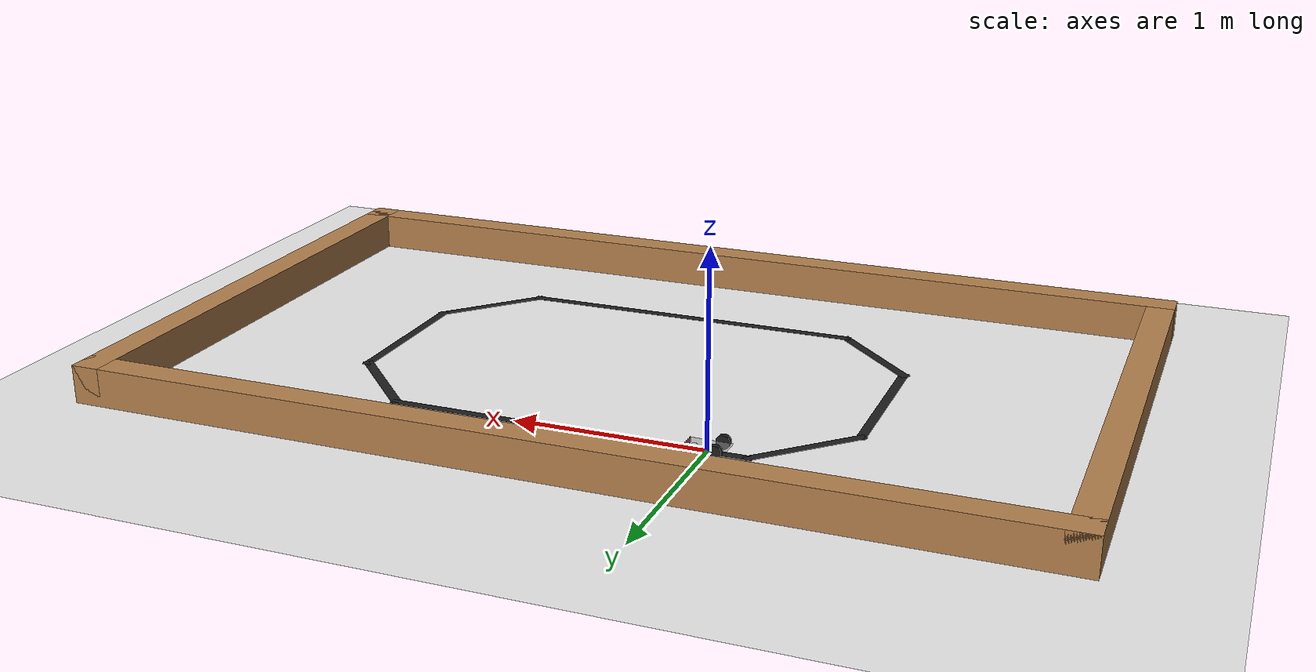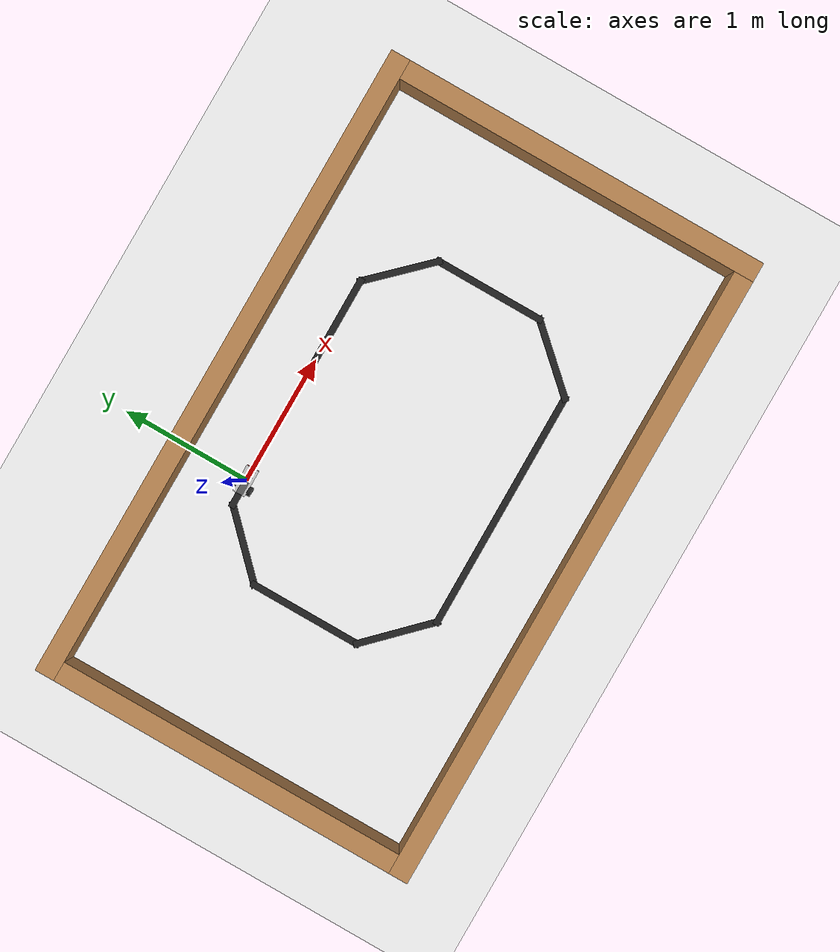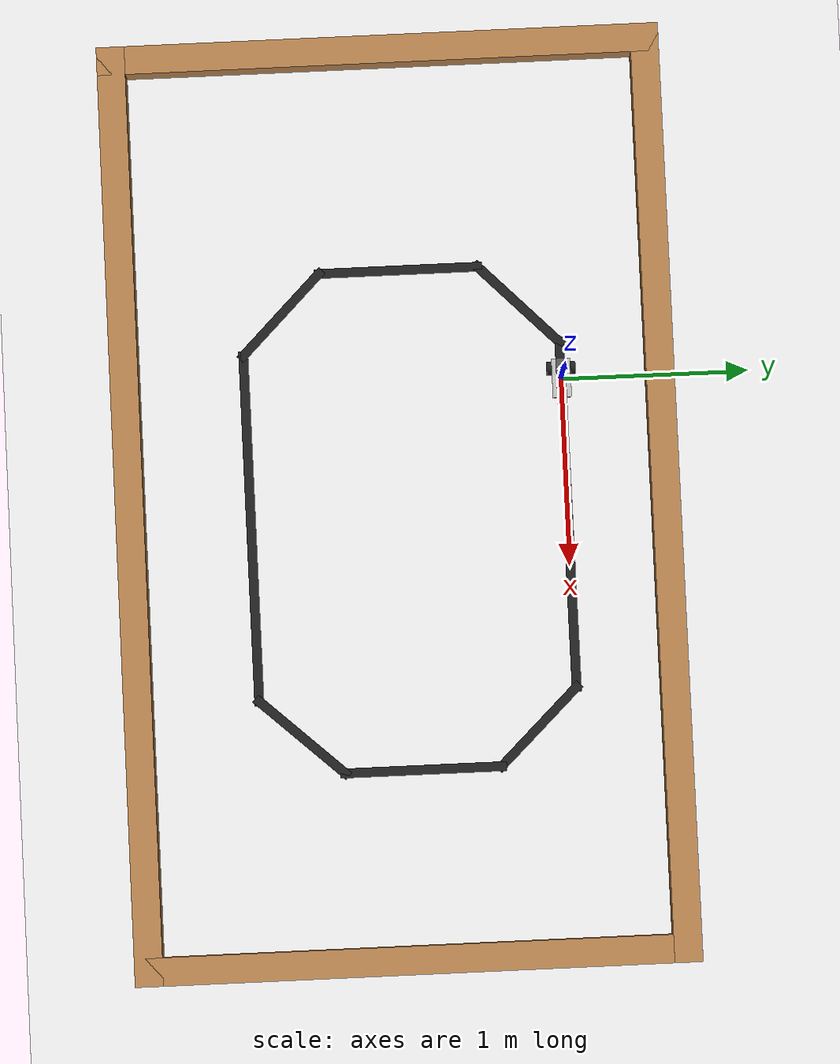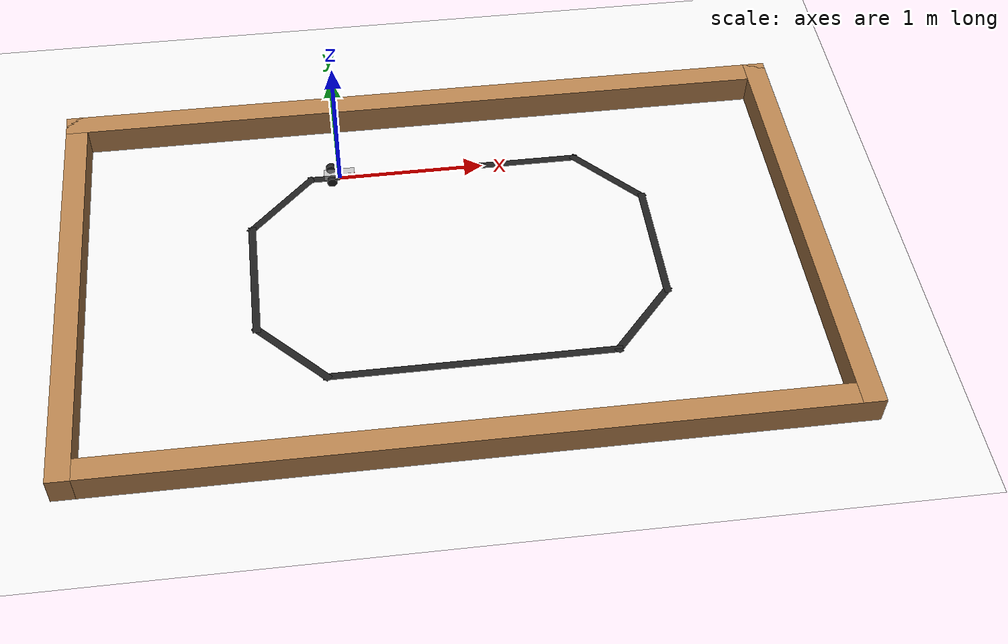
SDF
<sdf version="1.7">
 <world name="default">
  <light name="sun" type="directional">
   <pose>0 0 10 0 -0 0</pose>
   <diffuse>0.8 0.8 0.8 1</diffuse>
   <specular>0.2 0.2 0.2 1</specular>
   <attenuation>
    <range>1000</range>
    <constant>0.9</constant>
    <linear>0.01</linear>
    <quadratic>0.001</quadratic>
   </attenuation>
   <direction>-0.5 0.1 -0.9</direction>
   <spot><inner_angle>0</inner_angle><outer_angle>0</outer_angle><falloff>0</falloff></spot>
  </light>
  <model name="ground_plane">
   <static>1</static>
   <link name="link">
    <collision name="collision">
     <geometry><plane><normal>0 0 1</normal><size>100 100</size></plane></geometry>
     <surface><friction><ode><mu>100</mu><mu2>50</mu2></ode></friction></surface>
    </collision>
    <visual name="visual">
     <cast_shadows>0</cast_shadows>
     <geometry><plane><normal>0 0 1</normal><size>100 100</size></plane></geometry>
     <material>
      <script><uri>file://media/materials/scripts/gazebo.material</uri><name>Gazebo/White</name></script>
     </material>
    </visual>
   </link>
  </model>
  <gravity>0 0 -9.8</gravity>
  <magnetic_field>6e-06 2.3e-05 -4.2e-05</magnetic_field>
  <atmosphere type="adiabatic"/>
  <physics type="ode">
   <max_step_size>0.001</max_step_size>
   <real_time_factor>1</real_time_factor>
   <real_time_update_rate>1000</real_time_update_rate>
  </physics>
  <scene><ambient>0.4 0.4 0.4 1</ambient><background>0.7 0.7 0.7 1</background><shadows>1</shadows></scene>
  <audio><device>default</device></audio>
  <spherical_coordinates>
   <surface_model>EARTH_WGS84</surface_model>
   <latitude_deg>0</latitude_deg>
   <longitude_deg>0</longitude_deg>
   <elevation>0</elevation>
   <heading_deg>0</heading_deg>
  </spherical_coordinates>
  <model name="line_follower">
   <link name="base_footprint">
    <inertial>
     <pose>0.058658 0 0.03172 0 -0 0</pose>
     <mass>0.7588</mass>
     <inertia>
      <ixx>0.000623917</ixx>
      <ixy>0</ixy>
      <ixz>0.000147636</ixz>
      <iyy>0.00325815</iyy>
      <iyz>3.38813e-21</iyz>
      <izz>0.00377034</izz>
     </inertia>
    </inertial>
    <collision name="base_footprint_fixed_joint_lump__base_link_collision">
     <pose>0 0 0.0365 0 -0 0</pose>
     <geometry><box><size>0.21 0.1 0.003</size></box></geometry>
    </collision>
    <collision name="base_footprint_fixed_joint_lump__camera_link_0_collision_1">
     <pose>0.1055 0.036 0.029 3.14159 1.57079 3.14159</pose>
     <geometry><box><size>0.0331 0.014 0.001</size></box></geometry>
    </collision>
    <collision name="base_footprint_fixed_joint_lump__camera_link_1_collision_2">
     <pose>0.1055 0.012 0.029 3.14159 1.57079 3.14159</pose>
     <geometry><box><size>0.0331 0.014 0.001</size></box></geometry>
    </collision>
    <collision name="base_footprint_fixed_joint_lump__camera_link_2_collision_3">
     <pose>0.1055 -0.012 0.029 3.14159 1.57079 3.14159</pose>
     <geometry><box><size>0.0331 0.014 0.001</size></box></geometry>
    </collision>
    <collision name="base_footprint_fixed_joint_lump__camera_link_3_collision_4">
     <pose>0.1055 -0.036 0.029 3.14159 1.57079 3.14159</pose>
     <geometry><box><size>0.0331 0.014 0.001</size></box></geometry>
    </collision>
    <collision name="base_footprint_fixed_joint_lump__caster_wheel_link_collision_5">
     <pose>0.07 0 0.0175 0 -0 0</pose>
     <geometry><sphere><radius>0.0175</radius></sphere></geometry>
     <surface><friction><ode><mu>0.1</mu><mu2>0.1</mu2></ode></friction></surface>
    </collision>
    <visual name="base_footprint_fixed_joint_lump__base_link_visual">
     <pose>0 0 0.0365 0 -0 0</pose>
     <geometry><box><size>0.21 0.1 0.003</size></box></geometry>
     <material>
      <script><name>Gazebo/GreyTransparent</name><uri>file://media/materials/scripts/gazebo.material</uri></script>
     </material>
    </visual>
    <visual name="base_footprint_fixed_joint_lump__camera_link_0_visual_1">
     <pose>0.1055 0.036 0.029 3.14159 1.57079 3.14159</pose>
     <geometry><box><size>0.0331 0.014 0.001</size></box></geometry>
     <material>
      <script><name>Gazebo/Red</name><uri>file://media/materials/scripts/gazebo.material</uri></script>
     </material>
    </visual>
    <visual name="base_footprint_fixed_joint_lump__camera_link_1_visual_2">
     <pose>0.1055 0.012 0.029 3.14159 1.57079 3.14159</pose>
     <geometry><box><size>0.0331 0.014 0.001</size></box></geometry>
     <material>
      <script><name>Gazebo/Red</name><uri>file://media/materials/scripts/gazebo.material</uri></script>
     </material>
    </visual>
    <visual name="base_footprint_fixed_joint_lump__camera_link_2_visual_3">
     <pose>0.1055 -0.012 0.029 3.14159 1.57079 3.14159</pose>
     <geometry><box><size>0.0331 0.014 0.001</size></box></geometry>
     <material>
      <script><name>Gazebo/Red</name><uri>file://media/materials/scripts/gazebo.material</uri></script>
     </material>
    </visual>
    <visual name="base_footprint_fixed_joint_lump__camera_link_3_visual_4">
     <pose>0.1055 -0.036 0.029 3.14159 1.57079 3.14159</pose>
     <geometry><box><size>0.0331 0.014 0.001</size></box></geometry>
     <material>
      <script><name>Gazebo/Red</name><uri>file://media/materials/scripts/gazebo.material</uri></script>
     </material>
    </visual>
    <visual name="base_footprint_fixed_joint_lump__caster_wheel_link_visual_5">
     <pose>0.07 0 0.0175 0 -0 0</pose>
     <geometry><sphere><radius>0.0175</radius></sphere></geometry>
     <material>
      <script><name>Gazebo/White</name><uri>file://media/materials/scripts/gazebo.material</uri></script>
     </material>
    </visual>
    <sensor name="camera_sensor_0" type="camera">
     <visualize>1</visualize>
     <update_rate>10</update_rate>
     <plugin name="camera_controller_0" filename="libgazebo_ros_camera.so">
      <frame_name>camera_link_optical_0</frame_name>
     </plugin>
     <pose>0.1055 0.036 0.029 3.14159 1.57079 3.14159</pose>
     <camera>
      <horizontal_fov>1.047</horizontal_fov>
      <image><width>320</width><height>240</height></image>
      <clip><near>0.1</near><far>100</far></clip>
     </camera>
    </sensor>
    <sensor name="camera_sensor_1" type="camera">
     <visualize>1</visualize>
     <update_rate>10</update_rate>
     <plugin name="camera_controller_1" filename="libgazebo_ros_camera.so">
      <frame_name>camera_link_optical_1</frame_name>
     </plugin>
     <pose>0.1055 0.012 0.029 3.14159 1.57079 3.14159</pose>
     <camera>
      <horizontal_fov>1.047</horizontal_fov>
      <image><width>320</width><height>240</height></image>
      <clip><near>0.1</near><far>100</far></clip>
     </camera>
    </sensor>
    <sensor name="camera_sensor_2" type="camera">
     <visualize>1</visualize>
     <update_rate>10</update_rate>
     <plugin name="camera_controller_2" filename="libgazebo_ros_camera.so">
      <frame_name>camera_link_optical_2</frame_name>
     </plugin>
     <pose>0.1055 -0.012 0.029 3.14159 1.57079 3.14159</pose>
     <camera>
      <horizontal_fov>1.047</horizontal_fov>
      <image><width>320</width><height>240</height></image>
      <clip><near>0.1</near><far>100</far></clip>
     </camera>
    </sensor>
    <sensor name="camera_sensor_3" type="camera">
     <visualize>1</visualize>
     <update_rate>10</update_rate>
     <plugin name="camera_controller_3" filename="libgazebo_ros_camera.so">
      <frame_name>camera_link_optical_3</frame_name>
     </plugin>
     <pose>0.1055 -0.036 0.029 3.14159 1.57079 3.14159</pose>
     <camera>
      <horizontal_fov>1.047</horizontal_fov>
      <image><width>320</width><height>240</height></image>
      <clip><near>0.1</near><far>100</far></clip>
     </camera>
    </sensor>
   </link>
   <joint name="base_left_wheel_joint" type="revolute">
    <pose relative_to="base_footprint">-0.0525 0.0635 0.035 0 -0 0</pose>
    <parent>base_footprint</parent>
    <child>left_wheel_link</child>
    <axis>
     <xyz>0 1 0</xyz>
     <limit><lower>-1e+16</lower><upper>1e+16</upper></limit>
     <dynamics><spring_reference>0</spring_reference><spring_stiffness>0</spring_stiffness></dynamics>
    </axis>
   </joint>
   <link name="left_wheel_link">
    <pose relative_to="base_left_wheel_joint">0 0 0 0 -0 0</pose>
    <inertial>
     <pose>0 0 0 1.5708 -0 0</pose>
     <mass>0.0806</mass>
     <inertia>
      <ixx>2.95802e-05</ixx>
      <ixy>0</ixy>
      <ixz>0</ixz>
      <iyy>4.93675e-05</iyy>
      <iyz>0</iyz>
      <izz>2.95802e-05</izz>
     </inertia>
    </inertial>
    <collision name="left_wheel_link_collision">
     <pose>0 0 0 1.5708 -0 0</pose>
     <geometry><cylinder><length>0.027</length><radius>0.035</radius></cylinder></geometry>
    </collision>
    <visual name="left_wheel_link_visual">
     <pose>0 0 0 1.5708 -0 0</pose>
     <geometry><cylinder><length>0.027</length><radius>0.035</radius></cylinder></geometry>
     <material>
      <script><name>Gazebo/FlatBlack</name><uri>file://media/materials/scripts/gazebo.material</uri></script>
     </material>
    </visual>
   </link>
   <joint name="base_right_wheel_joint" type="revolute">
    <pose relative_to="base_footprint">-0.0525 -0.0635 0.035 0 -0 0</pose>
    <parent>base_footprint</parent>
    <child>right_wheel_link</child>
    <axis>
     <xyz>0 1 0</xyz>
     <limit><lower>-1e+16</lower><upper>1e+16</upper></limit>
     <dynamics><spring_reference>0</spring_reference><spring_stiffness>0</spring_stiffness></dynamics>
    </axis>
   </joint>
   <link name="right_wheel_link">
    <pose relative_to="base_right_wheel_joint">0 0 0 0 -0 0</pose>
    <inertial>
     <pose>0 0 0 1.5708 -0 0</pose>
     <mass>0.0806</mass>
     <inertia>
      <ixx>2.95802e-05</ixx>
      <ixy>0</ixy>
      <ixz>0</ixz>
      <iyy>4.93675e-05</iyy>
      <iyz>0</iyz>
      <izz>2.95802e-05</izz>
     </inertia>
    </inertial>
    <collision name="right_wheel_link_collision">
     <pose>0 0 0 1.5708 -0 0</pose>
     <geometry><cylinder><length>0.027</length><radius>0.035</radius></cylinder></geometry>
    </collision>
    <visual name="right_wheel_link_visual">
     <pose>0 0 0 1.5708 -0 0</pose>
     <geometry><cylinder><length>0.027</length><radius>0.035</radius></cylinder></geometry>
     <material>
      <script><name>Gazebo/FlatBlack</name><uri>file://media/materials/scripts/gazebo.material</uri></script>
     </material>
    </visual>
   </link>
   <static>0</static>
   <plugin name="diff_drive_controller" filename="libgazebo_ros_diff_drive.so">
    <update_rate>50</update_rate>
    <left_joint>base_left_wheel_joint</left_joint>
    <right_joint>base_right_wheel_joint</right_joint>
    <wheel_separation>0.127</wheel_separation>
    <wheel_diameter>0.07</wheel_diameter>
    <publish_odom>1</publish_odom>
    <publish_odom_tf>1</publish_odom_tf>
    <publish_wheel_tf>1</publish_wheel_tf>
    <odometry_topic>odom</odometry_topic>
    <odometry_frame>odom</odometry_frame>
    <robot_base_frame>base_footprint</robot_base_frame>
   </plugin>
   <pose>-0.002828 0.000454 0.00043 -1e-06 -0.008158 0.005165</pose>
  </model>
  <model name="line_follower_model">
   <pose>0.632 -0.902 0 0 -0 0</pose>
   <link name="Wall_0">
    <collision name="Wall_0_Collision">
     <geometry><box><size>1.9 0.05 0.001</size></box></geometry>
     <pose>0 0 0.0005 0 -0 0</pose>
    </collision>
    <visual name="Wall_0_Visual">
     <pose>0 0 0.0005 0 -0 0</pose>
     <geometry><box><size>1.9 0.05 0.001</size></box></geometry>
     <material>
      <script><uri>file://media/materials/scripts/gazebo.material</uri><name>Gazebo/Black</name></script>
      <ambient>0 0 0 1</ambient>
     </material>
     <meta><layer>0</layer></meta>
    </visual>
    <pose>0.093 0.9045 0 0 -0 0.002703</pose>
   </link>
   <link name="Wall_10">
    <collision name="Wall_10_Collision">
     <geometry><box><size>5 0.15 0.2</size></box></geometry>
     <pose>0 0 0.1 0 -0 0</pose>
    </collision>
    <visual name="Wall_10_Visual">
     <pose>0 0 0.1 0 -0 0</pose>
     <geometry><box><size>5 0.15 0.2</size></box></geometry>
     <material>
      <script><uri>file://media/materials/scripts/gazebo.material</uri><name>Gazebo/Wood</name></script>
      <ambient>1 1 1 1</ambient>
     </material>
     <meta><layer>0</layer></meta>
    </visual>
    <pose>0 1.425 0 0 -0 0</pose>
   </link>
   <link name="Wall_14">
    <collision name="Wall_14_Collision">
     <geometry><box><size>3 0.15 0.2</size></box></geometry>
     <pose>0 0 0.1 0 -0 0</pose>
    </collision>
    <visual name="Wall_14_Visual">
     <pose>0 0 0.1 0 -0 0</pose>
     <geometry><box><size>3 0.15 0.2</size></box></geometry>
     <material>
      <script><uri>file://media/materials/scripts/gazebo.material</uri><name>Gazebo/Wood</name></script>
      <ambient>1 1 1 1</ambient>
     </material>
     <meta><layer>0</layer></meta>
    </visual>
    <pose>2.425 -0 0 0 -0 -1.5708</pose>
   </link>
   <link name="Wall_15">
    <collision name="Wall_15_Collision">
     <geometry><box><size>5 0.15 0.2</size></box></geometry>
     <pose>0 0 0.1 0 -0 0</pose>
    </collision>
    <visual name="Wall_15_Visual">
     <pose>0 0 0.1 0 -0 0</pose>
     <geometry><box><size>5 0.15 0.2</size></box></geometry>
     <material>
      <script><uri>file://media/materials/scripts/gazebo.material</uri><name>Gazebo/Wood</name></script>
      <ambient>1 1 1 1</ambient>
     </material>
     <meta><layer>0</layer></meta>
    </visual>
    <pose>0 -1.425 0 0 -0 3.14159</pose>
   </link>
   <link name="Wall_16">
    <collision name="Wall_16_Collision">
     <geometry><box><size>3 0.15 0.2</size></box></geometry>
     <pose>0 0 0.1 0 -0 0</pose>
    </collision>
    <visual name="Wall_16_Visual">
     <pose>0 0 0.1 0 -0 0</pose>
     <geometry><box><size>3 0.15 0.2</size></box></geometry>
     <material>
      <script><uri>file://media/materials/scripts/gazebo.material</uri><name>Gazebo/Wood</name></script>
      <ambient>1 1 1 1</ambient>
     </material>
     <meta><layer>0</layer></meta>
    </visual>
    <pose>-2.425 -0 0 0 -0 1.5708</pose>
   </link>
   <link name="Wall_2">
    <collision name="Wall_2_Collision">
     <geometry><box><size>0.629912 0.05 0.001</size></box></geometry>
     <pose>0 0 0.0005 0 -0 0</pose>
    </collision>
    <visual name="Wall_2_Visual">
     <pose>0 0 0.0005 0 -0 0</pose>
     <geometry><box><size>0.629912 0.05 0.001</size></box></geometry>
     <material>
      <script><uri>file://media/materials/scripts/gazebo.material</uri><name>Gazebo/Black</name></script>
      <ambient>0 0 0 1</ambient>
     </material>
     <meta><layer>0</layer></meta>
    </visual>
    <pose>1.2195 0.6985 0 0 -0 -0.80247</pose>
   </link>
   <link name="Wall_3">
    <collision name="Wall_3_Collision">
     <geometry><box><size>0.884531 0.05 0.001</size></box></geometry>
     <pose>0 0 0.0005 0 -0 0</pose>
    </collision>
    <visual name="Wall_3_Visual">
     <pose>0 0 0.0005 0 -0 0</pose>
     <geometry><box><size>0.884531 0.05 0.001</size></box></geometry>
     <material>
      <script><uri>file://media/materials/scripts/gazebo.material</uri><name>Gazebo/Black</name></script>
      <ambient>0 0 0 1</ambient>
     </material>
     <meta><layer>0</layer></meta>
    </visual>
    <pose>1.421 0.0725 0 0 -0 -1.5708</pose>
   </link>
   <link name="Wall_4">
    <collision name="Wall_4_Collision">
     <geometry><box><size>0.648007 0.05 0.001</size></box></geometry>
     <pose>0 0 0.0005 0 -0 0</pose>
    </collision>
    <visual name="Wall_4_Visual">
     <pose>0 0 0.0005 0 -0 0</pose>
     <geometry><box><size>0.648007 0.05 0.001</size></box></geometry>
     <material>
      <script><uri>file://media/materials/scripts/gazebo.material</uri><name>Gazebo/Black</name></script>
      <ambient>0 0 0 1</ambient>
     </material>
     <meta><layer>0</layer></meta>
    </visual>
    <pose>1.2195 -0.566 0 0 -0 -2.31007</pose>
   </link>
   <link name="Wall_5">
    <collision name="Wall_5_Collision">
     <geometry><box><size>1.90001 0.05 0.001</size></box></geometry>
     <pose>0 0 0.0005 0 -0 0</pose>
    </collision>
    <visual name="Wall_5_Visual">
     <pose>0 0 0.0005 0 -0 0</pose>
     <geometry><box><size>1.90001 0.05 0.001</size></box></geometry>
     <material>
      <script><uri>file://media/materials/scripts/gazebo.material</uri><name>Gazebo/Black</name></script>
      <ambient>0 0 0 1</ambient>
     </material>
     <meta><layer>0</layer></meta>
    </visual>
    <pose>0.093 -0.7895 0 0 -0 -3.13889</pose>
   </link>
   <link name="Wall_6">
    <collision name="Wall_6_Collision">
     <geometry><box><size>0.650157 0.05 0.001</size></box></geometry>
     <pose>0 0 0.0005 0 -0 0</pose>
    </collision>
    <visual name="Wall_6_Visual">
     <pose>0 0 0.0005 0 -0 0</pose>
     <geometry><box><size>0.650157 0.05 0.001</size></box></geometry>
     <material>
      <script><uri>file://media/materials/scripts/gazebo.material</uri><name>Gazebo/Black</name></script>
      <ambient>0 0 0 1</ambient>
     </material>
     <meta><layer>0</layer></meta>
    </visual>
    <pose>-1.044 -0.58 0 0 -0 2.35619</pose>
   </link>
   <link name="Wall_7">
    <collision name="Wall_7_Collision">
     <geometry><box><size>0.90048 0.05 0.001</size></box></geometry>
     <pose>0 0 0.0005 0 -0 0</pose>
    </collision>
    <visual name="Wall_7_Visual">
     <pose>0 0 0.0005 0 -0 0</pose>
     <geometry><box><size>0.90048 0.05 0.001</size></box></geometry>
     <material>
      <script><uri>file://media/materials/scripts/gazebo.material</uri><name>Gazebo/Black</name></script>
      <ambient>0 0 0 1</ambient>
     </material>
     <meta><layer>0</layer></meta>
    </visual>
    <pose>-1.256 0.057 0 0 -0 1.5708</pose>
   </link>
   <link name="Wall_8">
    <collision name="Wall_8_Collision">
     <geometry><box><size>0.646805 0.05 0.001</size></box></geometry>
     <pose>0 0 0.0005 0 -0 0</pose>
    </collision>
    <visual name="Wall_8_Visual">
     <pose>0 0 0.0005 0 -0 0</pose>
     <geometry><box><size>0.646805 0.05 0.001</size></box></geometry>
     <material>
      <script><uri>file://media/materials/scripts/gazebo.material</uri><name>Gazebo/Black</name></script>
      <ambient>0 0 0 1</ambient>
     </material>
     <meta><layer>0</layer></meta>
    </visual>
    <pose>-1.044 0.692 0 0 -0 0.780659</pose>
   </link>
   <static>1</static>
  </model>
  <light name="user_directional_light_0" type="directional">
   <pose>8.06843 -0.177015 1 0 -0 0</pose>
   <diffuse>0.5 0.5 0.5 1</diffuse>
   <specular>0.1 0.1 0.1 1</specular>
   <direction>0.1 0.1 -0.9</direction>
   <attenuation>
    <range>20</range>
    <constant>0.5</constant>
    <linear>0.01</linear>
    <quadratic>0.001</quadratic>
   </attenuation>
  </light>
  <light name="user_directional_light_1" type="directional">
   <pose>-10.7998 19.3066 1 0 -0 0</pose>
   <diffuse>0.5 0.5 0.5 1</diffuse>
   <specular>0.1 0.1 0.1 1</specular>
   <direction>0.1 0.1 -0.9</direction>
   <attenuation>
    <range>20</range>
    <constant>0.5</constant>
    <linear>0.01</linear>
    <quadratic>0.001</quadratic>
   </attenuation>
  </light>
  <light name="user_directional_light_2" type="directional">
   <pose>-10.0312 21.2631 1 0 -0 0</pose>
   <diffuse>0.5 0.5 0.5 1</diffuse>
   <specular>0.1 0.1 0.1 1</specular>
   <direction>0.1 0.1 -0.9</direction>
   <attenuation>
    <range>20</range>
    <constant>0.5</constant>
    <linear>0.01</linear>
    <quadratic>0.001</quadratic>
   </attenuation>
  </light>
  <light name="user_directional_light_3" type="directional">
   <pose>-9.56479 4.94847 1 0 -0 0</pose>
   <diffuse>0.5 0.5 0.5 1</diffuse>
   <specular>0.1 0.1 0.1 1</specular>
   <direction>0.1 0.1 -0.9</direction>
   <attenuation>
    <range>20</range>
    <constant>0.5</constant>
    <linear>0.01</linear>
    <quadratic>0.001</quadratic>
   </attenuation>
  </light>
 </world>
</sdf>
